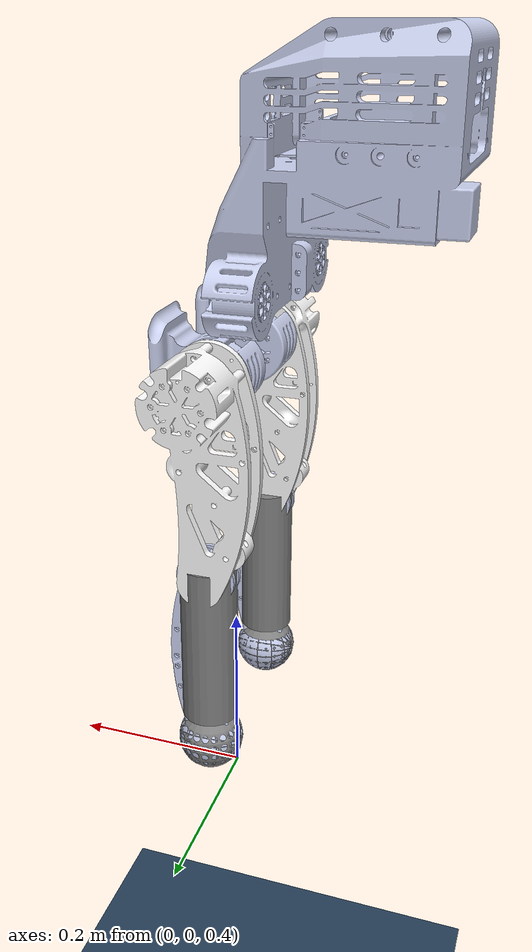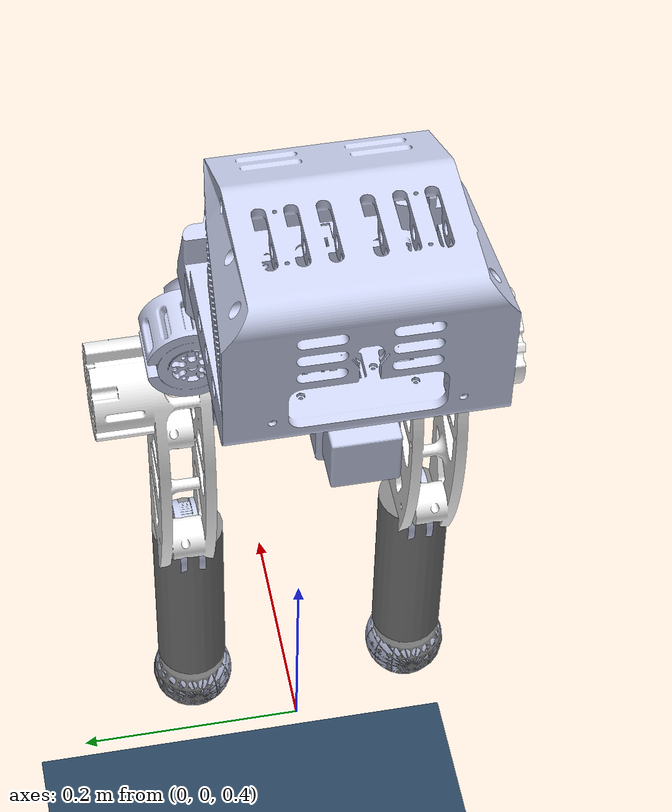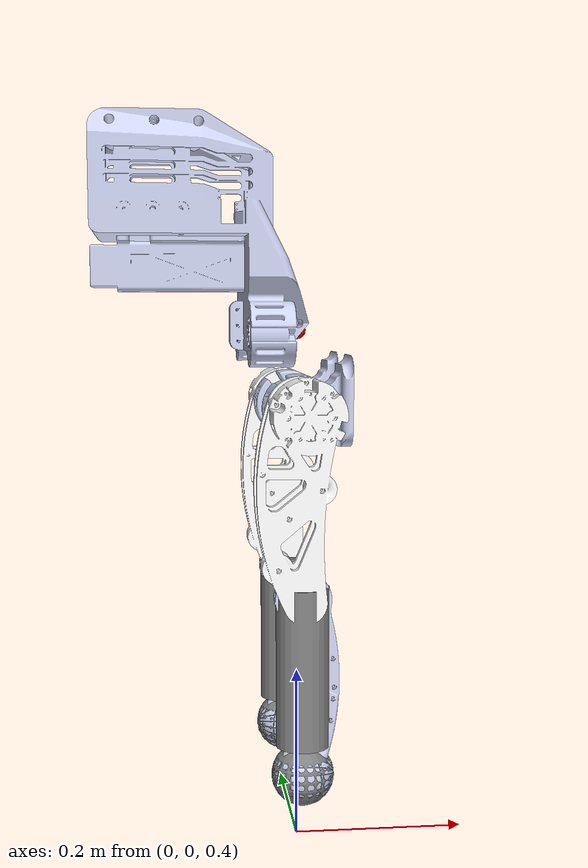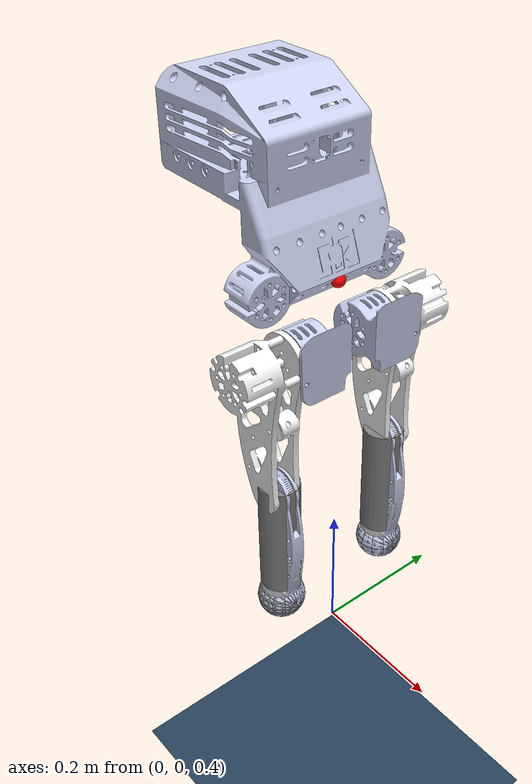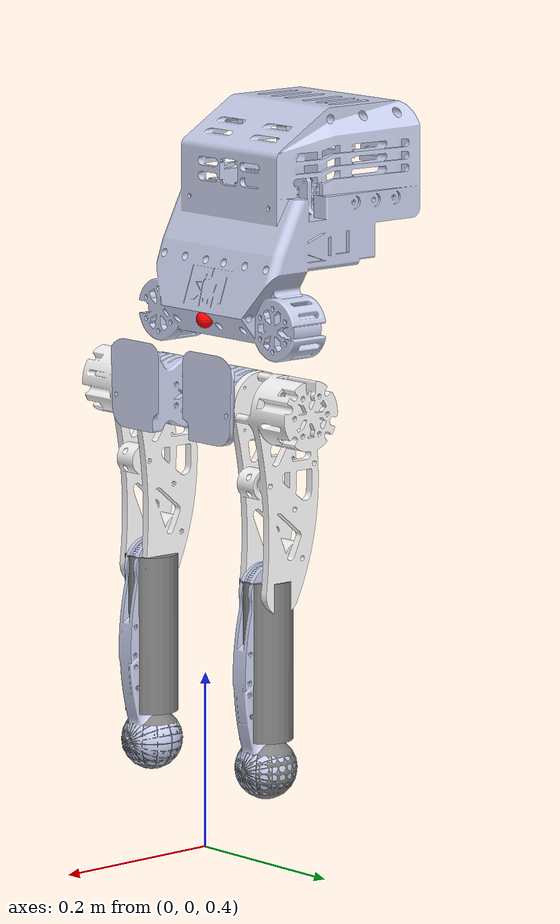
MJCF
<mujoco model="GOAT_Floating">
    <compiler angle="radian" coordinate="local" meshdir="../meshes/" autolimits="true"/>

    <option timestep="0.005" gravity="0 0 -9.81" integrator="implicit" solver="Newton" iterations="32"/>

    <asset>
        <texture  name="groundplane" type="2d" builtin="checker" mark="edge" rgb1="0.2 0.3 0.4" rgb2="0.1 0.2 0.3" markrgb="0.8 0.8 0.8" width="512" height="512"/>
        <material name="groundplane" texture="groundplane" texuniform="true" texrepeat="5 5" reflectance="0.2"/>
    </asset>

    <worldbody>
        <light directional="true" diffuse=".8 .8 .8" specular=".2 .2 .2" pos="0 0 5" dir="0 0 -1"/>
        <geom name="floor" type="plane" size="0 0 1" material="groundplane"/>
    </worldbody>

    <asset>
        <mesh name="base_Link" file="base_Link_simple.stl"/>
        <mesh name="hip_L_Link" file="hip_L_Link.stl"/>
        <mesh name="hip_R_Link" file="hip_R_Link.stl"/>
        <mesh name="thigh_L_Link" file="thigh_L_Link.stl"/>
        <mesh name="thigh_R_Link" file="thigh_R_Link.stl"/>
        <mesh name="calf_L_Link" file="point_calf_L_Link.stl"/>
        <mesh name="calf_R_Link" file="point_calf_R_Link.stl"/>

        <material name="orange" rgba="1.0 0.423 0.039 1.0"/>
        <material name="black" rgba="0.792 0.819 0.933 1.0"/>
        <material name="white" rgba="1.0 1.0 1.0 1.0"/>
    </asset>

    <default>
        <geom contype="1" conaffinity="1" friction="0.6 0.1 0.1"/>
        <motor ctrllimited="true"/>
    </default>

    <worldbody>
        <body name="base_Link" pos="0 0 1.0">
            <!-- Floating base -->
            <freejoint name="root"/>
            <site name="imu_site" pos="0 0 0" size="0.01" type="sphere" rgba="1 0 0 1"/>

            <inertial pos="0 0 0" mass="3.153308" fullinertia="0.021860000 0.025170000 0.023520000 -0.000011699458 0.006702000 0.000004493943"/>
            <geom type="mesh" mesh="base_Link" material="black" pos="-0.112941 0 0.084350" contype="0" conaffinity="0" group="1"/>
            <geom type="box" size="0.107 0.100 0.095" pos="-0.011 0 0.056" group="3"/>
            <geom type="box" size="0.035 0.125 0.040" pos="0.07 0 -0.078" group="3"/>

            <body name="hip_L_Link" pos="0.049579 0.096336 -0.087088">
                <joint name="hip_L_Joint" type="hinge" axis="-1 0 0" range="-1.7453 1.0123" damping="0.05" frictionloss="0.04" armature="0.00"/>
                <inertial pos="-0.0475 -0.038265 0.000247" mass="0.326" fullinertia="0.000153800 0.000232600 0.000209300 -0.00001384168 -0.000007365016 -0.000000923815"/>
                <geom type="mesh" mesh="hip_L_Link" material="black" contype="0" conaffinity="0" group="1"/>
                <geom type="cylinder" size="0.042 0.0675" pos="-0.0535 0 0" euler="1.57 0 0" group="3"/>

                <body name="thigh_L_Link" pos="-0.054 -0.017 0">
                    <joint name="thigh_L_Joint" type="hinge" axis="0 1 0" range="-0.3840 2.0071" damping="0.08" frictionloss="0.15" armature="0.00"/>
                    <inertial pos="-0.002015 0.042352 -0.035272" mass="0.483216" fullinertia="0.002425000 0.002342000 0.000385000 -0.000020797926 -0.000075779875 -0.000378300"/>
                    <geom type="mesh" mesh="thigh_L_Link" material="white" contype="0" conaffinity="0" group="1"/>
                    <geom type="box" size="0.045 0.025 0.0725" pos="-0.011 0.016 -0.116" group="3"/>

                    <body name="calf_L_Link" pos="0 0.018 -0.205">
                        <joint name="knee_L_Joint" type="hinge" axis="0 -1 0" range="-0.523599 2.3387" damping="0.15" frictionloss="0.25" armature="0.008"/>
                        <inertial pos="0.003619 -0.000038 -0.122422" mass="0.145" fullinertia="0.0011322 0.0011512 0.000064899 -0.000000027 -0.000012685 -0.000002282"/>
                        <geom type="mesh" mesh="calf_L_Link" material="black" contype="0" conaffinity="0" group="1"/>
                        <geom type="cylinder" pos="0 0 -0.077" size="0.03 0.09"/>
                        <geom name="point_L_collision" type="sphere" pos="0 0 -0.2" size="0.035"/>
                    </body>
                </body>
            </body>

            <body name="hip_R_Link" pos="0.049579 -0.096336 -0.087088">
                <joint name="hip_R_Joint" type="hinge" axis="-1 0 0" range="-1.0123 1.7453" damping="0.05" frictionloss="0.04" armature="0.00"/>
                <inertial pos="-0.0475 0.038265 0.000247" mass="0.326" fullinertia="0.000153800 0.000232600 0.000209300 0.00001384168 -0.000007365016 0.000000923815"/>
                <geom type="mesh" mesh="hip_R_Link" material="black" contype="0" conaffinity="0" group="1"/>
                <geom type="cylinder" size="0.042 0.0675" pos="-0.0535 0 0" euler="1.57 0 0" group="3"/>

                <body name="thigh_R_Link" pos="-0.054 0.017 0">
                    <joint name="thigh_R_Joint" type="hinge" axis="0 -1 0" range="-2.0071 0.3840" damping="0.08" frictionloss="0.15" armature="0.00"/>
                    <inertial pos="-0.002015 -0.042352 -0.035272" mass="0.483216" fullinertia="0.002425000 0.002342000 0.000385000 0.000020797926 -0.000075779875 0.000378300"/>
                    <geom type="mesh" mesh="thigh_R_Link" material="white" contype="0" conaffinity="0" group="1"/>
                    <geom type="box" size="0.045 0.025 0.0725" pos="-0.011 -0.016 -0.116" group="3"/>

                    <body name="calf_R_Link" pos="0 -0.018 -0.205">
                        <joint name="knee_R_Joint" type="hinge" axis="0 1 0" range="-2.3387 0.523599" damping="0.15" frictionloss="0.25" armature="0.008"/>
                        <inertial pos="0.003619 0.000038 -0.122422" mass="0.145" fullinertia="0.0011322 0.0011512 0.000064899 0.000000027 -0.000012685 0.000002282"/>
                        <geom type="mesh" mesh="calf_R_Link" material="black" contype="0" conaffinity="0" group="1"/>
                        <geom type="cylinder" pos="0 0 -0.077" size="0.03 0.09"/>
                        <geom name="point_R_collision" type="sphere" pos="0 0 -0.2" size="0.035"/>
                    </body>
                </body>
            </body>
        </body>
    </worldbody>

    <contact>
        <exclude body1="base_Link"    body2="hip_L_Link"/>
        <exclude body1="base_Link"    body2="hip_R_Link"/>
        <exclude body1="base_Link"    body2="thigh_L_Link"/>
        <exclude body1="base_Link"    body2="thigh_R_Link"/>
        <exclude body1="base_Link"    body2="calf_L_Link"/>
        <exclude body1="base_Link"    body2="calf_R_Link"/>
        <exclude body1="hip_L_Link"   body2="hip_R_Link"/>
        <exclude body1="hip_L_Link"   body2="thigh_R_Link"/>
        <exclude body1="hip_L_Link"   body2="calf_L_Link"/>
        <exclude body1="hip_L_Link"   body2="calf_R_Link"/>
        <exclude body1="hip_R_Link"   body2="thigh_L_Link"/>
        <exclude body1="hip_R_Link"   body2="calf_L_Link"/>
        <exclude body1="hip_R_Link"   body2="calf_R_Link"/>
        <exclude body1="thigh_L_Link" body2="thigh_R_Link"/>
        <exclude body1="thigh_L_Link" body2="calf_R_Link"/>
        <exclude body1="thigh_R_Link" body2="calf_L_Link"/>
        <exclude body1="calf_L_Link"  body2="calf_R_Link"/>
    </contact>

    <contact>
        <pair name="floor_point_L"
            geom1="floor"
            geom2="point_L_collision"
            condim="3"
            friction="0.7 0.7 0.0 0.0 0.0"
            solref="0.02 1.0"
            solimp="0.9 0.95 0.001 0.5 2"/>

        <pair name="floor_point_R"
            geom1="floor"
            geom2="point_R_collision"
            condim="3"
            friction="0.7 0.7 0.0 0.0 0.0"
            solref="0.02 1.0"
            solimp="0.9 0.95 0.001 0.5 2"/>
    </contact>

    <!-- Torque actuators: ctrl is a joint torque [Nm]. Joint-level PD lives in
         the controller, matching the real robot's torque-setpoint driver. -->
    <actuator>
        <motor name="hip_L_Joint"   joint="hip_L_Joint"   ctrllimited="true" ctrlrange="-4.5 4.5" forcelimited="true" forcerange="-4.5 4.5"/>
        <motor name="thigh_L_Joint" joint="thigh_L_Joint" ctrllimited="true" ctrlrange="-4.5 4.5" forcelimited="true" forcerange="-4.5 4.5"/>
        <motor name="knee_L_Joint"  joint="knee_L_Joint"  ctrllimited="true" ctrlrange="-9.0 9.0" forcelimited="true" forcerange="-9.0 9.0"/>
        <motor name="hip_R_Joint"   joint="hip_R_Joint"   ctrllimited="true" ctrlrange="-4.5 4.5" forcelimited="true" forcerange="-4.5 4.5"/>
        <motor name="thigh_R_Joint" joint="thigh_R_Joint" ctrllimited="true" ctrlrange="-4.5 4.5" forcelimited="true" forcerange="-4.5 4.5"/>
        <motor name="knee_R_Joint"  joint="knee_R_Joint"  ctrllimited="true" ctrlrange="-9.0 9.0" forcelimited="true" forcerange="-9.0 9.0"/>
    </actuator>

    <sensor>
        <framequat name="imu_quat" objtype="site" objname="imu_site"/>
        <accelerometer name="imu_acc" site="imu_site"/>
        <gyro name="imu_gyro" site="imu_site"/>
        <magnetometer name="imu_mag" site="imu_site"/>
    </sensor>

    <keyframe>
        <key name="home"
             qpos="0 0 0.42676   1 0 0 0   0 0.9943 1.884 0   0 -0.9943 -1.884 0"
             qvel="0 0 0       0 0 0     0 0 0 0           0 0 0 0"
             ctrl="0 0 0 0     0 0"/>
    </keyframe>

</mujoco>
